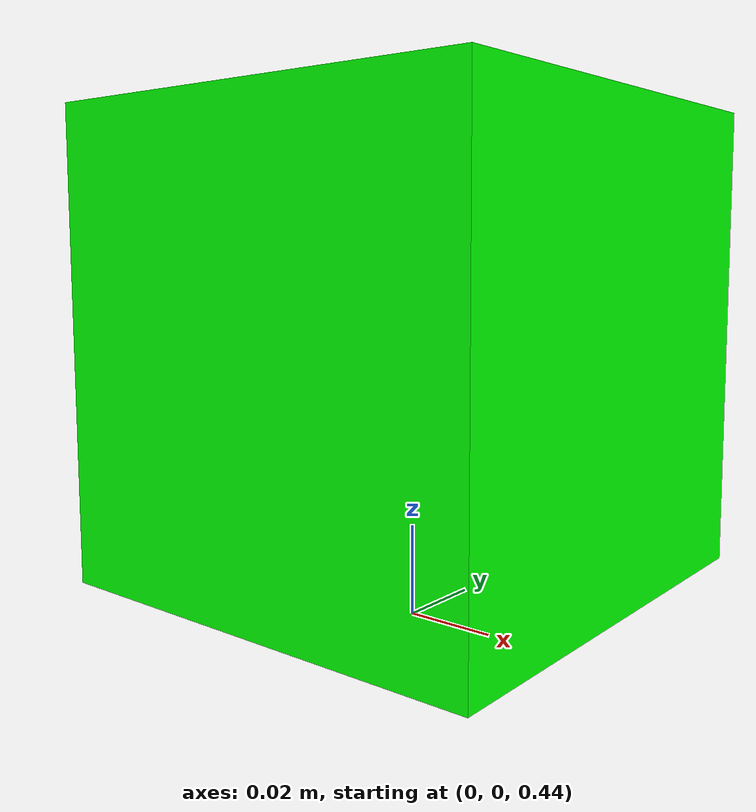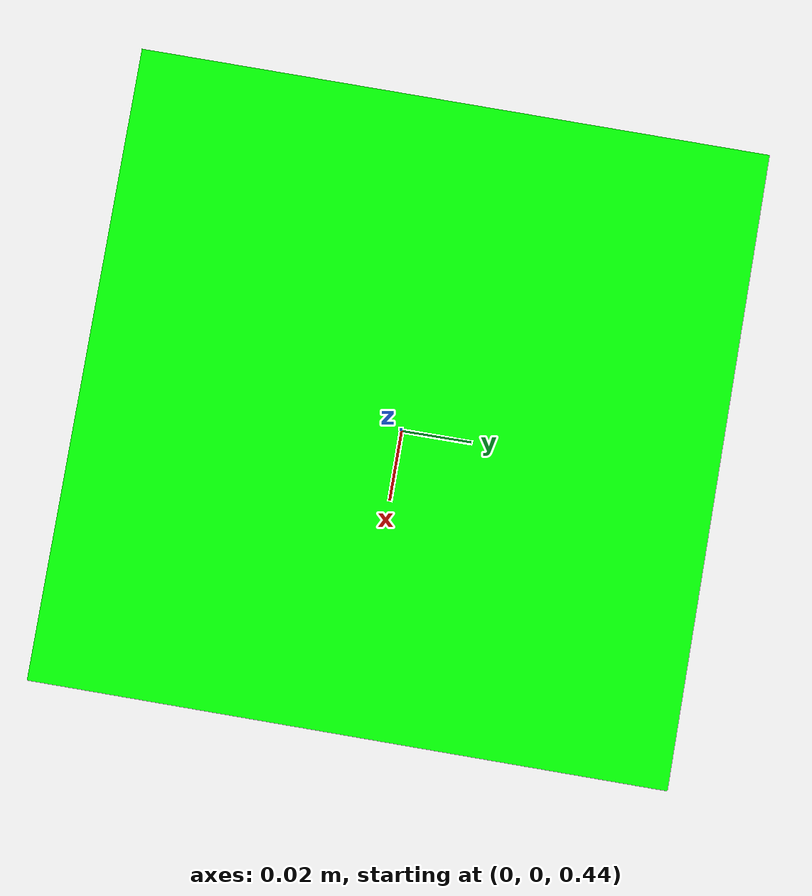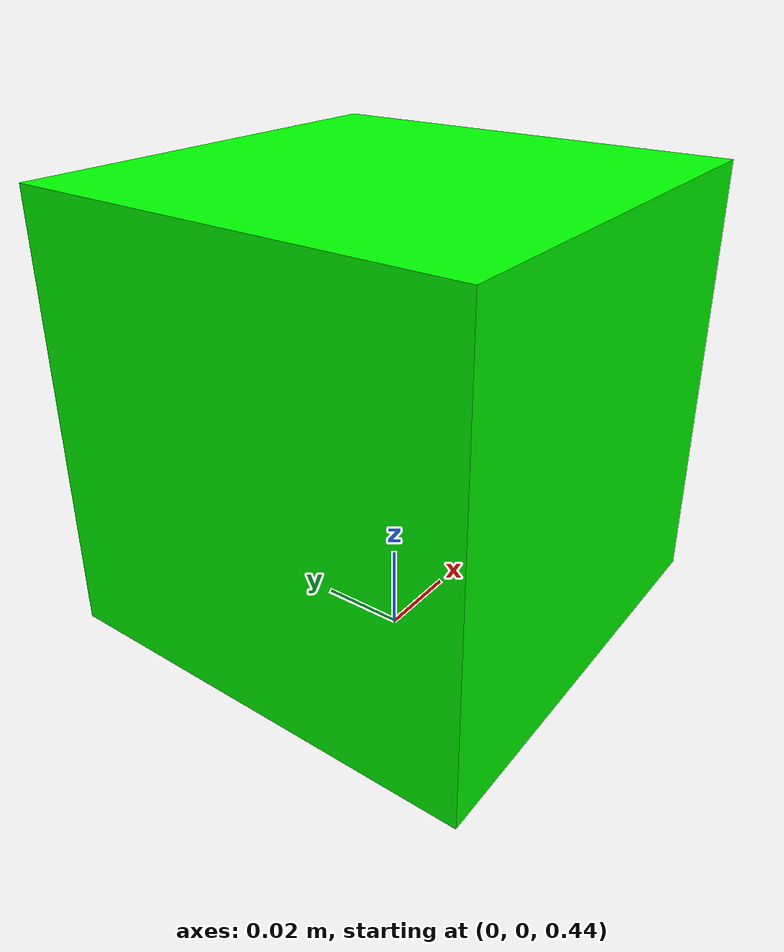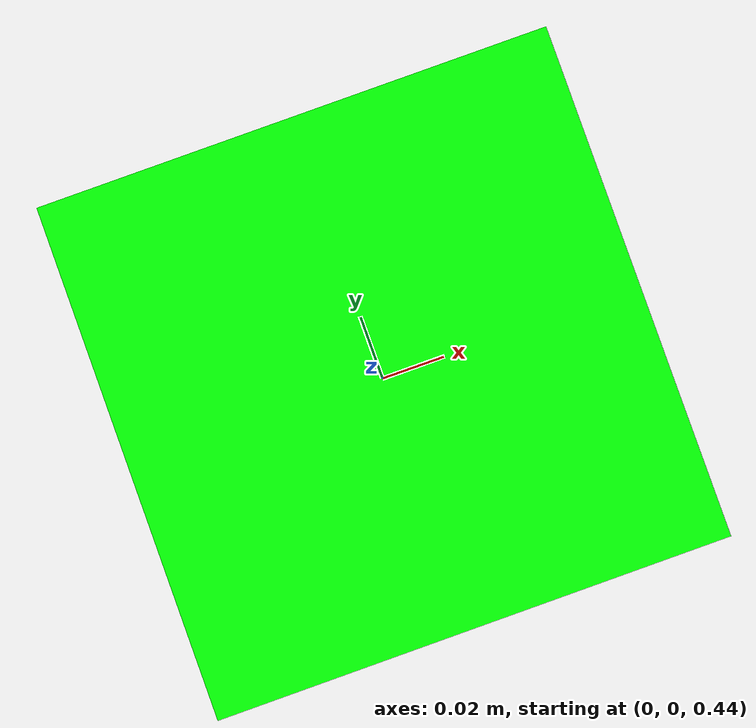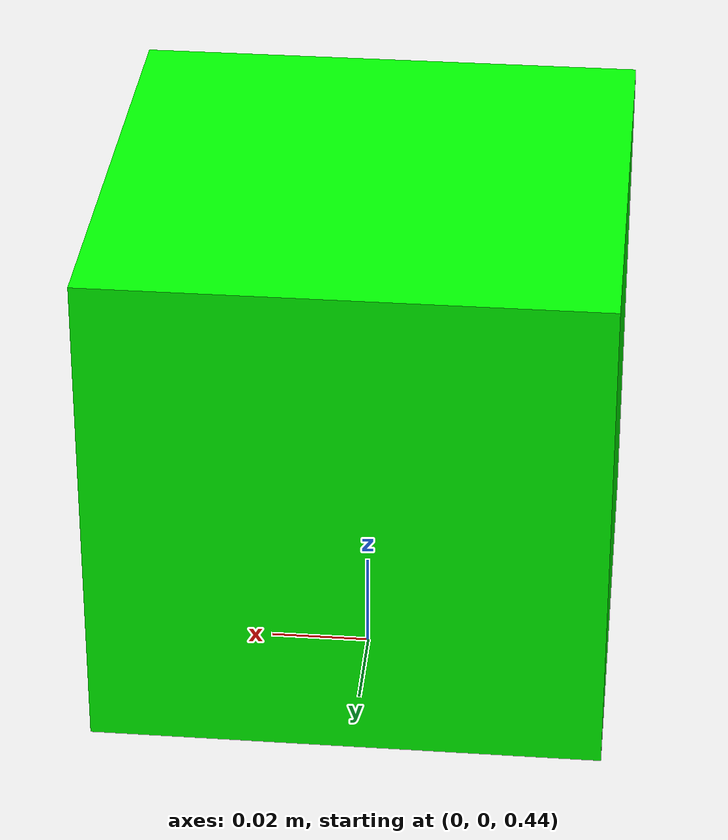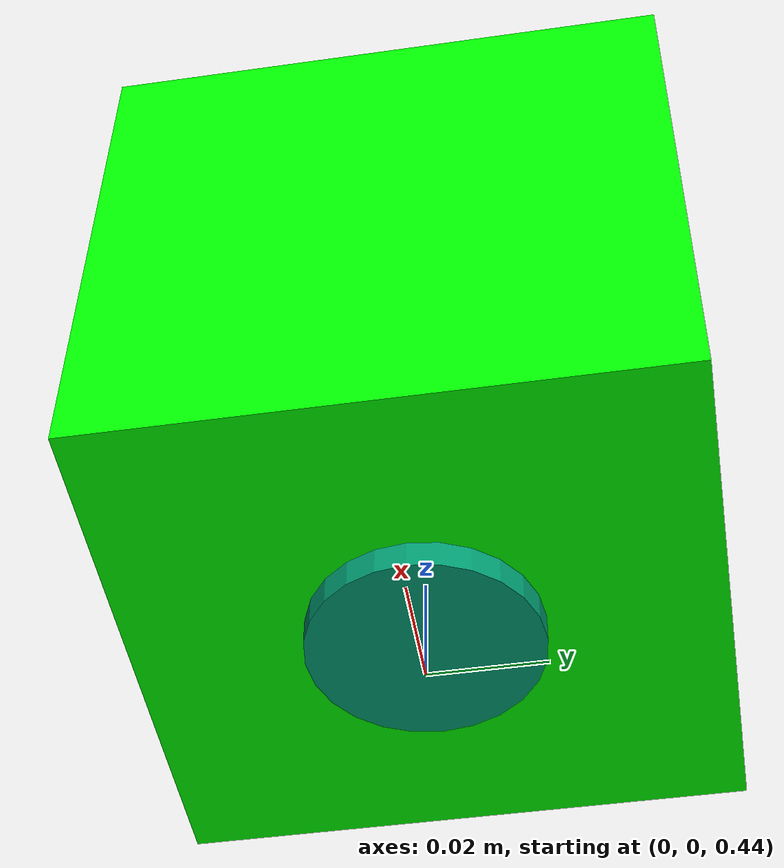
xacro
<robot name="camera">
    <link name="base_link"/>
    <joint name="first_joint" type="fixed">
        <parent link="base_link"/>
        <child link="camera_link"/>
    <origin xyz="0.0 0.0 0.5" rpy="0 0.0 0.0"/>
    </joint>

    <link name="camera_link">
        <visual>
            <origin xyz="0.0 0.0 0.0" rpy="0.0 0.0 0.0"/>
            <geometry>
                <box size="0.1 0.1 0.1"/>
            </geometry>
            <material name="Cyan">
                <color rgba="0.0 1.0 0.0 1.0"/>
            </material>
        </visual>
        <collision>
            <origin xyz="0.0 0.0 0.0" rpy="0.0 0.0 0.0"/>
            <geometry>
                <box size="0.1 0.1 0.1"/>
            </geometry>
        </collision>
        <inertial>
            <origin xyz="0.0 0.0 0.0" rpy="0.0 0.0 0.0"/>
            <mass value="0.5"/>
            <inertia ixx="0.01" ixy="0.0" ixz="0.0" iyy="0.01" iyz="0.0" izz="0.01" />
        </inertial>
    </link>

    <joint name="camera_joint" type="fixed">
        <parent link="camera_link"/>
        <child link="camera_end"/>
        <origin xyz="0.0 0.0 -0.05" rpy="0.0 0.0 0.0"/>
    </joint>

    <link name="camera_end">
        <visual>
            <geometry>
                <cylinder radius="0.02" length="0.01"/>
            </geometry>
        </visual>
    </link>
    <gazebo reference="camera_link">
        <material>Gazebo/Gray</material>
        <sensor type="camera" name="camera1">
            <update_rate>30.0</update_rate>
            <camera name="head">
                <horizontal_fov>1.3962634</horizontal_fov>
                <image>
                <width>640</width>
                <height>360</height>
                <format>R8G8B8</format>
                </image>
                <clip>
                <near>0.02</near>
                <far>300</far>
                </clip>
                <noise>
                <type>gaussian</type>
                <mean>0.0</mean>
                <stddev>0.007</stddev>
                </noise>
            </camera>
            <plugin name="camera_controller" filename="libgazebo_ros_camera.so">
                <alwaysOn>true</alwaysOn>
                <updateRate>0.0</updateRate>
                <cameraName>camera</cameraName>
                <imageTopicName>image_raw</imageTopicName>
                <cameraInfoTopicName>camera_info</cameraInfoTopicName>
                <frameName>camera_link</frameName>
                <hackBaseline>0.07</hackBaseline>
                <distortionK1>0.0</distortionK1>
                <distortionK2>0.0</distortionK2>
                <distortionK3>0.0</distortionK3>
                <distortionT1>0.0</distortionT1>
                <distortionT2>0.0</distortionT2>
            </plugin>
        </sensor>
    </gazebo>

</robot>
